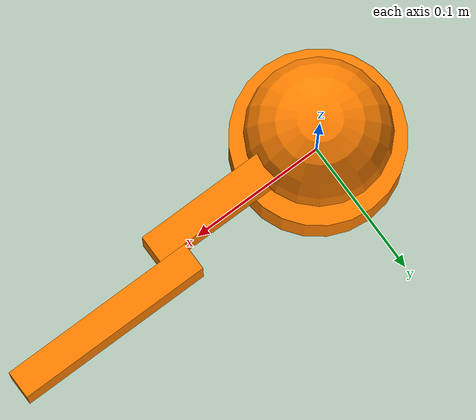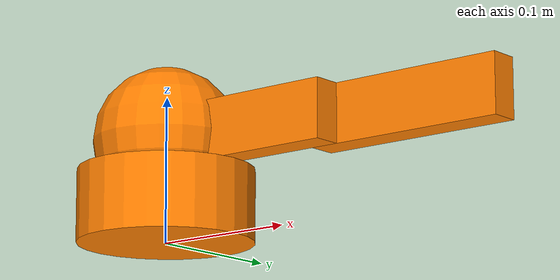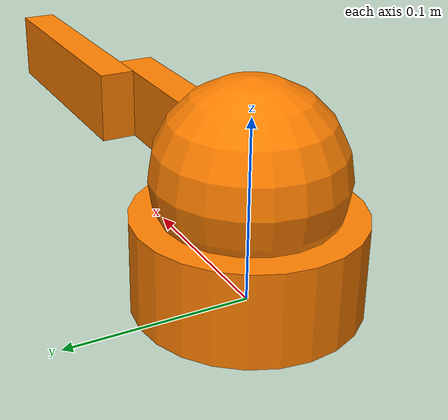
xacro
<?xml version ="1.0"?>

<robot name="agv_mini_manipulator" xmlns:xacro="http://www.ros.org/wiki/xacro">

    <xacro:include filename="common_properties.xacro"/>
    <xacro:include filename="common_hardware.xacro"/>

    <!-- Mobile Base-->
    <!-- Sensors -->
    <!-- Manipulator -->
    <xacro:include filename="$(find agv_mini_manipulator_description)/urdf/manipulator/manipulator.xacro"/>

</robot>

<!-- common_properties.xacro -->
<robot xmlns:xacro="http://www.ros.org/wiki/xacro">
    <!-- Materials -->
    <material name="blue">
        <color rgba="0 0 1 1"/>
    </material>

    <material name="black">
        <color rgba="0 0 0 1"/>
    </material>

    <material name="gray">
        <color rgba="0.5 0.5 0.5 1"/>
    </material>

    <material name="orange">
        <color rgba="1 0.5 0 1"/>
    </material>

    <!-- Common Xacros -->
    <xacro:macro name="box_inertia" params="m o_xyz o_rpy length width height">
            <inertial>
                <mass value="${m}"/>
                <origin xyz="${o_xyz}" rpy="${o_rpy}"/>
                <inertia ixx="${m /12 * (width**2 + height**2)}" ixy="0" ixz="0"
                         iyy="${m /12 * (length**2 + height**2)}" iyz="0"
                         izz="${m /12 * (length**2 + width**2)}"/>
            </inertial>
    </xacro:macro>

    <xacro:macro name="box_link" params="link_name m o_xyz o_rpy length width height material_name">
        <link name="${link_name}">
            <visual>
                <geometry>
                <box size="${length} ${width} ${height}"/>
                </geometry>
                <origin xyz="${o_xyz}" rpy="${o_rpy}"/>
                <material name="${material_name}"/>
            </visual>

            <collision>
                <geometry>
                <box size="${length} ${width} ${height}"/>
                </geometry>
                <origin xyz="${o_xyz}" rpy="${o_rpy}"/>
            </collision>

            <xacro:box_inertia m="${m}" o_xyz="${o_xyz}" o_rpy="${o_rpy}"
            length="${length}" width="${width}" height="${height}"/>
        </link>
    </xacro:macro>

    <xacro:macro name="cylinder_inertia" params="m radius length o_xyz o_rpy">
        <inertial>
            <mass value="${m}"/>
            <origin xyz="${o_xyz}" rpy="${o_rpy}"/>
            <inertia ixx="${m / 12 * (3*radius**2 + length**2)}" ixy="0" ixz="0"
                        iyy="${m / 12 * (3*radius**2 + length**2)}" iyz="0"
                        izz="${m / 2 * radius**2}"/>
        </inertial>
    </xacro:macro>

    <xacro:macro name="cylinder" params="link_name m o_xyz o_rpy radius length material_name">
        <link name="${link_name}">
            <visual>
                <geometry>
                    <cylinder radius="${radius}" length="${length}"/>
                </geometry>
                <origin xyz="${o_xyz}" rpy="${o_rpy}"/>
                <material name="${material_name}"/>
            </visual>

            <collision>
                <geometry>
                    <cylinder radius="${radius}" length="${length}"/>
                </geometry>
                <origin xyz="${o_xyz}" rpy="${o_rpy}"/>
            </collision>

            <xacro:cylinder_inertia
            m="${m}" radius="${radius}" length="${length}"
            o_xyz="${o_xyz}" o_rpy="${o_rpy}"/>
        </link>
    </xacro:macro>

    <xacro:macro name="sphere_inertia" params="m radius o_xyz o_rpy">
        <inertial>
            <mass value="${m}"/>
            <origin xyz="${o_xyz}" rpy="${o_rpy}"/>
            <inertia ixx="${2/5 * m * (radius)**2}" ixy="0" ixz="0"
                     iyy="${2/5 * m * (radius)**2}" iyz="0"
                     izz="${2/5 * m * (radius)**2}"/>
        </inertial>
    </xacro:macro>

    <xacro:macro name="sphere" params="link_name m o_xyz o_rpy radius material_name">
        <link name="${link_name}">
            <visual>
                <geometry>
                <sphere radius="${radius}"/>
                </geometry>
                <origin xyz="${o_xyz}" rpy="${o_rpy}"/>
                <material name="${material_name}"/>
            </visual>

            <collision>
                <geometry>
                <sphere radius="${radius}"/>
                </geometry>
                <origin xyz="${o_xyz}" rpy="${o_rpy}"/>
            </collision>

            <xacro:sphere_inertia
            m="${m}" radius="${radius}"
            o_xyz="${o_xyz}" o_rpy="${o_rpy}"/>
        </link>
    </xacro:macro>

    <!-- Joint Xacros -->
    <xacro:macro name="nonzero_inertia">
        <inertial>
            <mass value="0.0001"/>
            <origin xyz="0 0 0" rpy="0 0 0"/>
            <inertia ixx="1e-9" ixy="0" ixz="0"
                     iyy="1e-9" iyz="0"
                     izz="1e-9"/>
        </inertial>
    </xacro:macro>

    <xacro:macro name="three_axis_joint" params="prefix parent_link">
        <link name="${prefix}_link_x">
            <xacro:nonzero_inertia/>
        </link>
        <joint name="${prefix}_joint_x" type="continuous">
            <parent link="${parent_link}"/>
            <child link="${prefix}_link_x"/>
            <origin xyz="0 0 0" rpy="0 0 0"/>
            <axis xyz="1 0 0"/>
        </joint>

        <link name="${prefix}_link_y">
            <xacro:nonzero_inertia/>
        </link>
        <joint name="${prefix}_joint_y" type="continuous">
            <parent link="${prefix}_link_x"/>
            <child link="${prefix}_link_y"/>
            <origin xyz="0 0 0" rpy="0 0 0"/>
            <axis xyz="0 1 0"/>
        </joint>

        <link name="${prefix}_link_z">
            <xacro:nonzero_inertia/>
        </link>
        <joint name="${prefix}_joint_z" type="continuous">
            <parent link="${prefix}_link_y"/>
            <child link="${prefix}_link_z"/>
            <origin xyz="0 0 0" rpy="0 0 0"/>
            <axis xyz="0 0 1"/>
        </joint>
    </xacro:macro>

</robot>

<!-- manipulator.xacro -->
<robot xmlns:xacro="http://www.ros.org/wiki/xacro">

    <!-- Variables -->
    <xacro:property name="manipulator_link_width" value="0.04"/>
    <xacro:property name="manipulator_link_thickness" value="0.02"/>
    <xacro:property name="manipulator_joint_offset" value="0.01"/>

    <xacro:property name="q1_height" value="0.05"/>
    <xacro:property name="q1_limit_lower" value="${-3*pi / 4.0}"/>
    <xacro:property name="q1_limit_upper" value="${3*pi / 4.0}"/>
    <xacro:property name="q1_limit_effort" value="100"/>
    <xacro:property name="q1_limit_velocity" value="100.0"/>

    <xacro:property name="q2_length" value="0.132"/>
    <xacro:property name="q2_limit_lower" value="${-3*pi / 4.0}"/>
    <xacro:property name="q2_limit_upper" value="0.0"/>
    <xacro:property name="q2_limit_effort" value="100"/>
    <xacro:property name="q2_limit_velocity" value="100.0"/>

    <xacro:property name="q3_length" value="0.132"/>
    <xacro:property name="q3_limit_lower" value="${-3*pi / 4.0}"/>
    <xacro:property name="q3_limit_upper" value="${3*pi / 4.0}"/>
    <xacro:property name="q3_limit_effort" value="100"/>
    <xacro:property name="q3_limit_velocity" value="100.0"/>

    <!-- manipulator_base_link -->
    <xacro:cylinder link_name="manipulator_base_link" m="2.0" o_xyz="0 0 ${q1_height / 2.0}"
    o_rpy="0 0 0" radius="0.06" length="${q1_height}" material_name="orange"/>
    <!-- manipulator_base_link -->

    <xacro:sphere link_name="q1_link" m="0.75" o_xyz="0 0 0" o_rpy="0 0 0"
    radius="0.05" material_name="orange"/>

    <joint name="q1" type="revolute">
        <parent link="manipulator_base_link"/>
        <child link="q1_link"/>
        <origin xyz="0 0 ${q1_height + manipulator_link_width / 2.0}" rpy="0 0 0"/>
        <axis xyz="0 0 1"/>
        <limit lower="${q1_limit_lower}" upper="${q1_limit_upper}"
        effort="${q1_limit_effort}" velocity="${q1_limit_velocity}"/>
    </joint>

    <xacro:box_link link_name="q2_link" m="0.5" o_xyz="${q2_length / 2.0} 0 0"
    o_rpy="0 0 0" length="${q2_length + manipulator_joint_offset}" width="${manipulator_link_width}"
    height="${manipulator_link_thickness}" material_name="orange"/>

    <joint name="q2" type="revolute">
        <parent link="q1_link"/>
        <child link="q2_link"/>
        <origin xyz="0 0 0" rpy="${-pi / 2.0} 0 0"/>
        <axis xyz="0 0 1"/>
        <limit lower="${q2_limit_lower}" upper="${q2_limit_upper}"
        effort="${q2_limit_effort}" velocity="${q2_limit_velocity}"/>
    </joint>

    <xacro:box_link link_name="q3_link" m="0.5" o_xyz="${q3_length / 2.0} 0 0"
    o_rpy="0 0 0" length="${q3_length + manipulator_joint_offset}" width="${manipulator_link_width}"
    height="${manipulator_link_thickness}" material_name="orange"/>

    <joint name="q3" type="revolute">
        <parent link="q2_link"/>
        <child link="q3_link"/>
        <origin xyz="${q2_length - manipulator_joint_offset} 0 ${manipulator_link_thickness}"
        rpy="0 0 0"/>
        <axis xyz="0 0 1"/>
        <limit lower="${q3_limit_lower}" upper="${q3_limit_upper}"
        effort="${q3_limit_effort}" velocity="${q3_limit_velocity}"/>
    </joint>

</robot>
